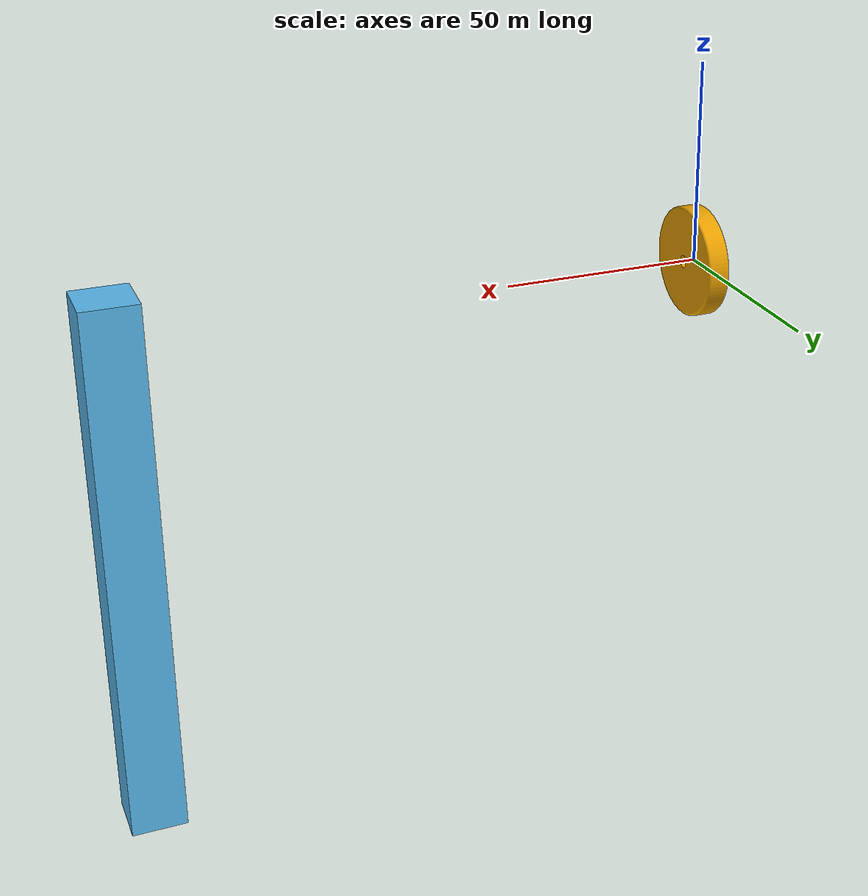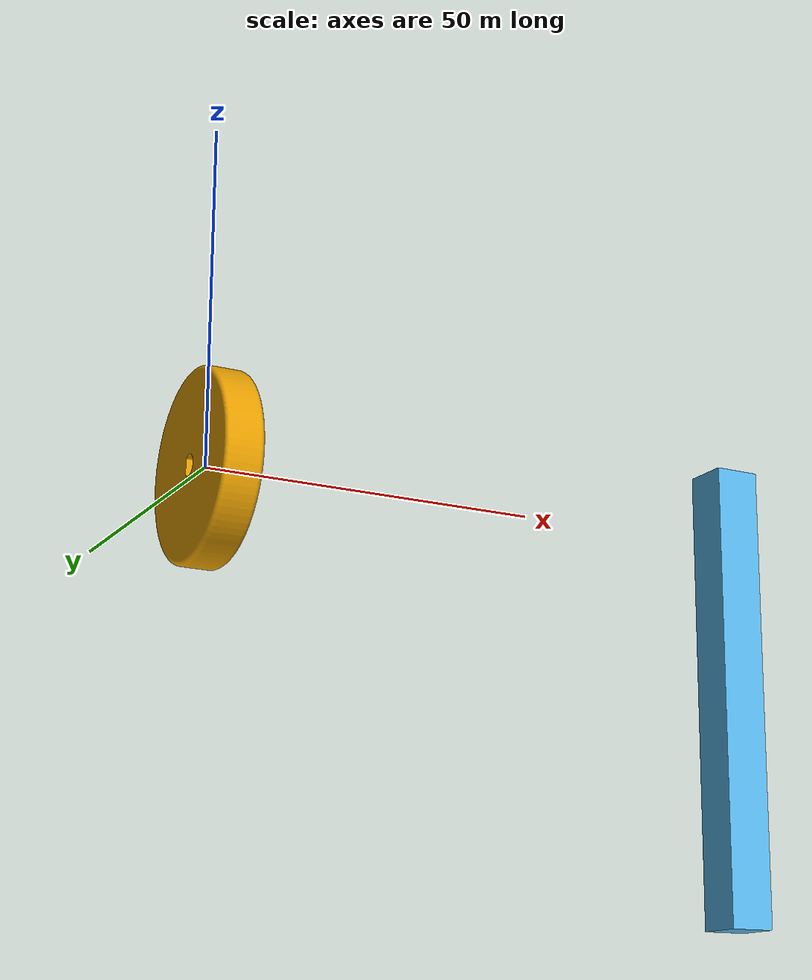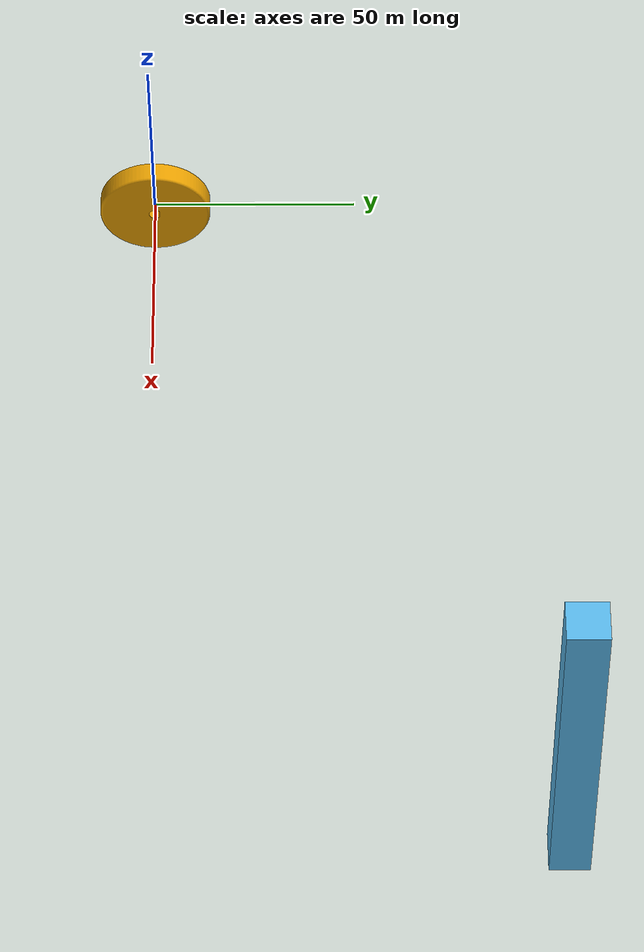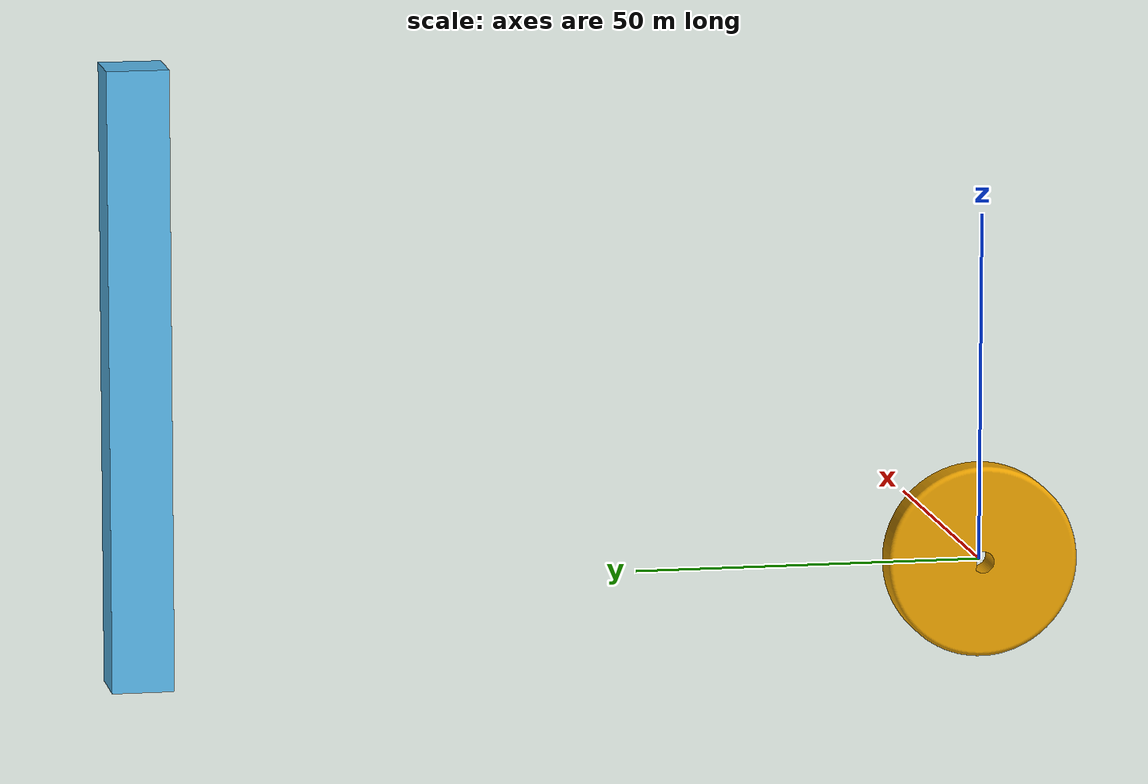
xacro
<?xml version="1.0"?>
<!-- Revolute-Revolute Manipulator -->
<robot name="rover_UT" xmlns:xacro="http://www.ros.org/wiki/xacro">

  <!-- Base Link -->

  <link name="base_link">
    <visual>
      <origin xyz="3 13.75 -13.75" rpy="1.57 0 -1.57"/>
      <geometry>
	      <mesh filename="package://rover_model/meshes/wheel_big.dae"/>
      </geometry>
    </visual>
  </link>

  <!-- Middle Link -->
  <link name="test">
    <visual>
      <origin xyz="0 0 0" rpy="0 0 0"/>
      <geometry>
	      <box size="10 10 100"/>
      </geometry>
    </visual>
  </link>

  <joint name="joint_base_mid" type="revolute">
    <parent link="base_link"/>
    <child link="test"/>
    <origin xyz="160 100 0" rpy="0 0 0"/>
    <axis xyz="0 1 0"/>
    <dynamics damping="1"/>
    <limit effort="100.0" velocity="0.5" lower="-3.14" upper="3.14" />
  </joint>

</robot>
